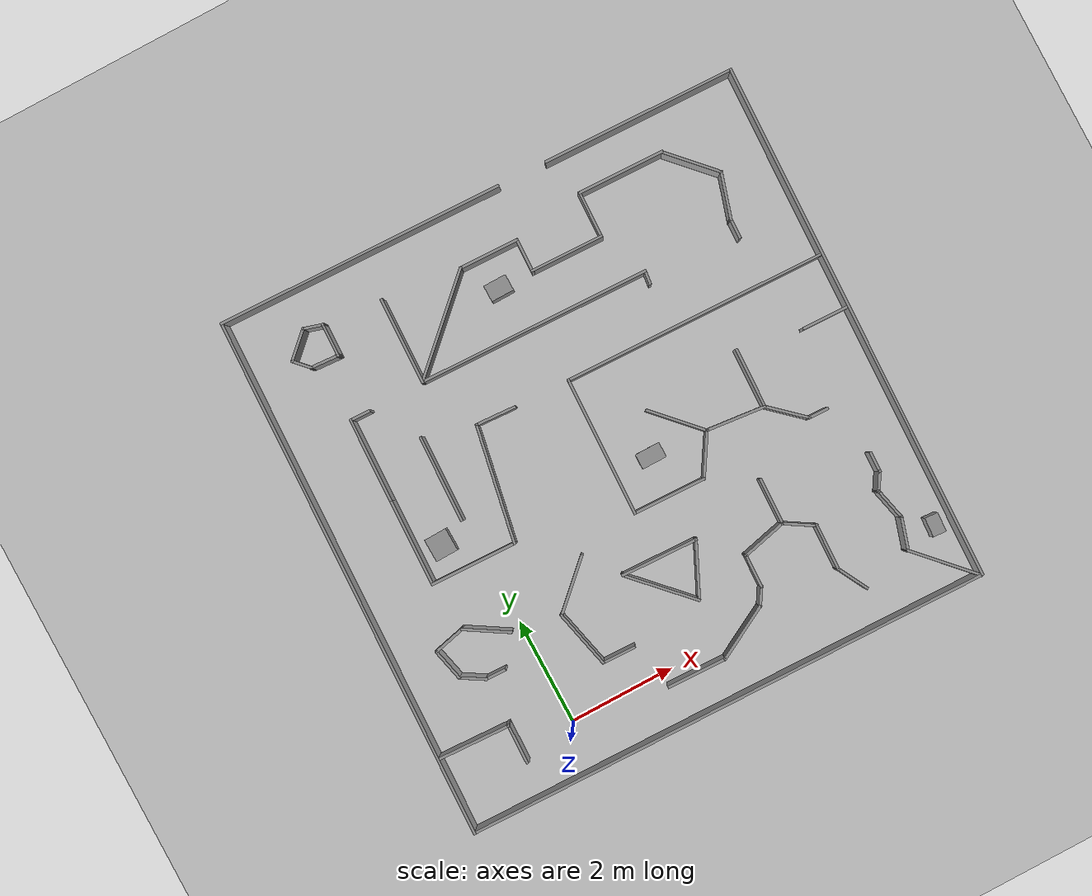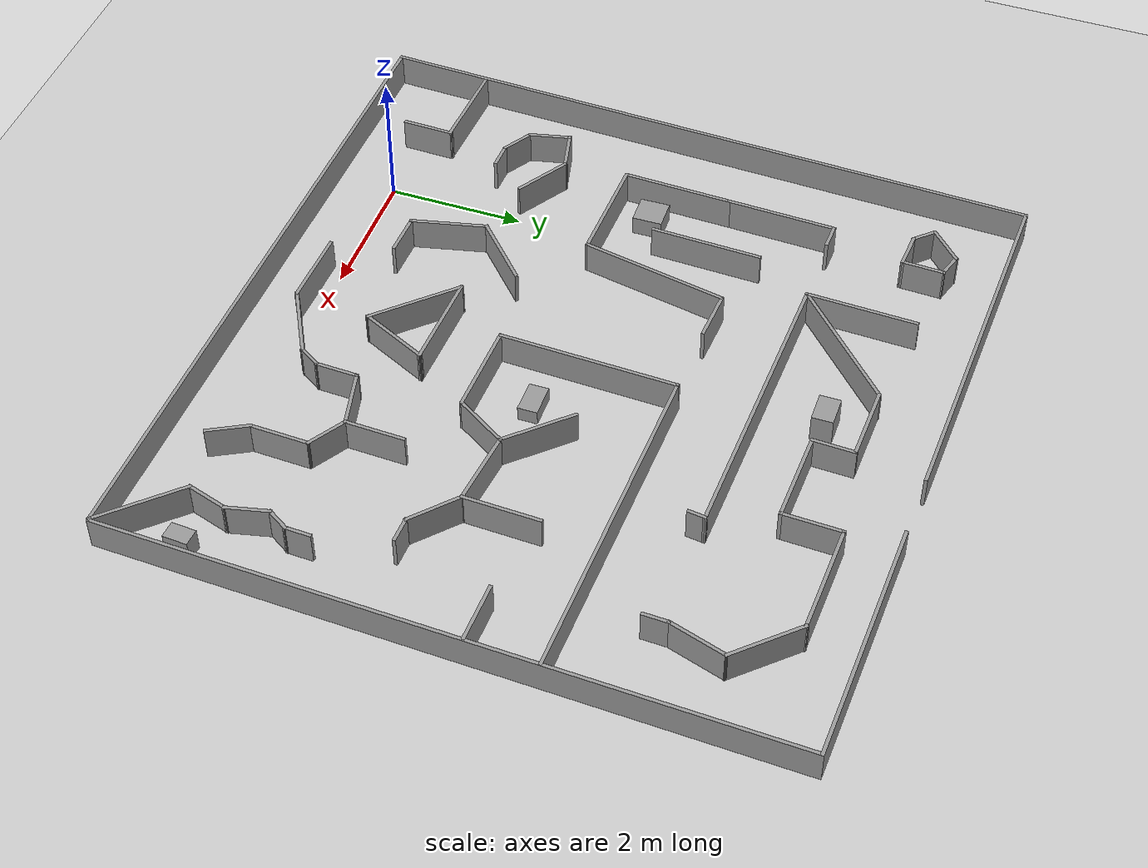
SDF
<sdf version="1.7">
 <world name="default">
  <light name="sun" type="directional">
   <pose>0 0 10 0 -0 0</pose>
   <diffuse>0.8 0.8 0.8 1</diffuse>
   <specular>0.2 0.2 0.2 1</specular>
   <attenuation>
    <range>1000</range>
    <constant>0.9</constant>
    <linear>0.01</linear>
    <quadratic>0.001</quadratic>
   </attenuation>
   <direction>-0.5 0.1 -0.9</direction>
   <spot><inner_angle>0</inner_angle><outer_angle>0</outer_angle><falloff>0</falloff></spot>
  </light>
  <model name="ground_plane">
   <static>1</static>
   <link name="link">
    <collision name="collision">
     <geometry><plane><normal>0 0 1</normal><size>100 100</size></plane></geometry>
     <surface>
      <contact><collide_bitmask>65535</collide_bitmask></contact>
      <friction><ode><mu>100</mu><mu2>50</mu2></ode></friction>
     </surface>
    </collision>
    <visual name="visual">
     <cast_shadows>0</cast_shadows>
     <geometry><plane><normal>0 0 1</normal><size>100 100</size></plane></geometry>
     <material>
      <script><uri>file://media/materials/scripts/gazebo.material</uri><name>Gazebo/Grey</name></script>
     </material>
    </visual>
   </link>
  </model>
  <gravity>0 0 -9.8</gravity>
  <magnetic_field>6e-06 2.3e-05 -4.2e-05</magnetic_field>
  <atmosphere type="adiabatic"/>
  <physics type="ode">
   <max_step_size>0.001</max_step_size>
   <real_time_factor>1</real_time_factor>
   <real_time_update_rate>1000</real_time_update_rate>
  </physics>
  <scene><ambient>0.4 0.4 0.4 1</ambient><background>0.7 0.7 0.7 1</background><shadows>1</shadows></scene>
  <spherical_coordinates>
   <surface_model>EARTH_WGS84</surface_model>
   <latitude_deg>0</latitude_deg>
   <longitude_deg>0</longitude_deg>
   <elevation>0</elevation>
   <heading_deg>0</heading_deg>
  </spherical_coordinates>
  <model name="zhencha">
   <pose>2.70425 3.3884 0 0 -0 3.11326</pose>
   <link name="Wall_0">
    <collision name="Wall_0_Collision">
     <geometry><box><size>9.9 0.05 0.5</size></box></geometry>
     <pose>0 0 0.25 0 -0 0</pose>
    </collision>
    <visual name="Wall_0_Visual">
     <pose>0 0 0.25 0 -0 0</pose>
     <geometry><box><size>9.9 0.05 0.5</size></box></geometry>
     <material>
      <script><uri>file://media/materials/scripts/gazebo.material</uri><name>Gazebo/Grey</name></script>
      <ambient>1 1 1 1</ambient>
     </material>
     <meta><layer>0</layer></meta>
    </visual>
    <pose>-4.98321 -0.637479 0 0 -0 -1.5708</pose>
   </link>
   <link name="Wall_10">
    <collision name="Wall_10_Collision">
     <geometry><box><size>1.65 0.05 0.5</size></box></geometry>
     <pose>0 0 0.25 0 -0 0</pose>
    </collision>
    <visual name="Wall_10_Visual">
     <pose>0 0 0.25 0 -0 0</pose>
     <geometry><box><size>1.65 0.05 0.5</size></box></geometry>
     <material>
      <script><uri>file://media/materials/scripts/gazebo.material</uri><name>Gazebo/Grey</name></script>
      <ambient>1 1 1 1</ambient>
     </material>
     <meta><layer>0</layer></meta>
    </visual>
    <pose>2.27679 -3.88248 0 0 -0 -1.5708</pose>
   </link>
   <link name="Wall_12">
    <collision name="Wall_12_Collision">
     <geometry><box><size>0.280868 0.05 0.5</size></box></geometry>
     <pose>0 0 0.25 0 -0 0</pose>
    </collision>
    <visual name="Wall_12_Visual">
     <pose>0 0 0.25 0 -0 0</pose>
     <geometry><box><size>0.280868 0.05 0.5</size></box></geometry>
     <material>
      <script><uri>file://media/materials/scripts/gazebo.material</uri><name>Gazebo/Grey</name></script>
      <ambient>1 1 1 1</ambient>
     </material>
     <meta><layer>0</layer></meta>
    </visual>
    <pose>-2.06321 -2.96748 0 0 -0 -1.65753</pose>
   </link>
   <link name="Wall_14">
    <collision name="Wall_14_Collision">
     <geometry><box><size>0.780274 0.05 0.5</size></box></geometry>
     <pose>0 0 0.25 0 -0 0</pose>
    </collision>
    <visual name="Wall_14_Visual">
     <pose>0 0 0.25 0 -0 0</pose>
     <geometry><box><size>0.780274 0.05 0.5</size></box></geometry>
     <material>
      <script><uri>file://media/materials/scripts/gazebo.material</uri><name>Gazebo/Grey</name></script>
      <ambient>1 1 1 1</ambient>
     </material>
     <meta><layer>0</layer></meta>
    </visual>
    <pose>1.40179 -1.98248 0 0 -0 -0.02739</pose>
   </link>
   <link name="Wall_15">
    <collision name="Wall_15_Collision">
     <geometry><box><size>2.21529 0.05 0.5</size></box></geometry>
     <pose>0 0 0.25 0 -0 0</pose>
    </collision>
    <visual name="Wall_15_Visual">
     <pose>0 0 0.25 0 -0 0</pose>
     <geometry><box><size>2.21529 0.05 0.5</size></box></geometry>
     <material>
      <script><uri>file://media/materials/scripts/gazebo.material</uri><name>Gazebo/Grey</name></script>
      <ambient>1 1 1 1</ambient>
     </material>
     <meta><layer>0</layer></meta>
    </visual>
    <pose>1.93179 -0.912479 0 0 -0 1.4178</pose>
   </link>
   <link name="Wall_17">
    <collision name="Wall_17_Collision">
     <geometry><box><size>2.65 0.05 0.5</size></box></geometry>
     <pose>0 0 0.25 0 -0 0</pose>
    </collision>
    <visual name="Wall_17_Visual">
     <pose>0 0 0.25 0 -0 0</pose>
     <geometry><box><size>2.65 0.05 0.5</size></box></geometry>
     <material>
      <script><uri>file://media/materials/scripts/gazebo.material</uri><name>Gazebo/Grey</name></script>
      <ambient>1 1 1 1</ambient>
     </material>
     <meta><layer>0</layer></meta>
    </visual>
    <pose>-0.02321 -0.67248 0 0 -0 1.5708</pose>
   </link>
   <link name="Wall_18">
    <collision name="Wall_18_Collision">
     <geometry><box><size>1.4 0.05 0.5</size></box></geometry>
     <pose>0 0 0.25 0 -0 0</pose>
    </collision>
    <visual name="Wall_18_Visual">
     <pose>0 0 0.25 0 -0 0</pose>
     <geometry><box><size>1.4 0.05 0.5</size></box></geometry>
     <material>
      <script><uri>file://media/materials/scripts/gazebo.material</uri><name>Gazebo/Grey</name></script>
      <ambient>1 1 1 1</ambient>
     </material>
     <meta><layer>0</layer></meta>
    </visual>
    <pose>-0.69821 0.627521 0 0 -0 3.14159</pose>
   </link>
   <link name="Wall_19">
    <collision name="Wall_19_Collision">
     <geometry><box><size>0.9 0.05 0.5</size></box></geometry>
     <pose>0 0 0.25 0 -0 0</pose>
    </collision>
    <visual name="Wall_19_Visual">
     <pose>0 0 0.25 0 -0 0</pose>
     <geometry><box><size>0.9 0.05 0.5</size></box></geometry>
     <material>
      <script><uri>file://media/materials/scripts/gazebo.material</uri><name>Gazebo/Grey</name></script>
      <ambient>1 1 1 1</ambient>
     </material>
     <meta><layer>0</layer></meta>
    </visual>
    <pose>-1.58571 0.259521 0 0 -0 -2.09447</pose>
   </link>
   <link name="Wall_2">
    <pose>-0.00821 -5.56248 0 0 -0 0</pose>
    <visual name="Wall_2_Visual_0">
     <pose>-3.1725 0 0.25 0 -0 0</pose>
     <geometry><box><size>3.655 0.05 0.5</size></box></geometry>
     <material>
      <script><uri>file://media/materials/scripts/gazebo.material</uri><name>Gazebo/Grey</name></script>
      <ambient>1 1 1 1</ambient>
     </material>
     <meta><layer>0</layer></meta>
    </visual>
    <collision name="Wall_2_Collision_0">
     <geometry><box><size>3.655 0.05 0.5</size></box></geometry>
     <pose>-3.1725 0 0.25 0 -0 0</pose>
    </collision>
    <visual name="Wall_2_Visual_1">
     <pose>2.2775 0 0.25 0 -0 0</pose>
     <geometry><box><size>5.445 0.05 0.5</size></box></geometry>
     <material>
      <script><uri>file://media/materials/scripts/gazebo.material</uri><name>Gazebo/Grey</name></script>
      <ambient>1 1 1 1</ambient>
     </material>
     <meta><layer>0</layer></meta>
    </visual>
    <collision name="Wall_2_Collision_1">
     <geometry><box><size>5.445 0.05 0.5</size></box></geometry>
     <pose>2.2775 0 0.25 0 -0 0</pose>
    </collision>
   </link>
   <link name="Wall_20">
    <collision name="Wall_20_Collision">
     <geometry><box><size>1.14292 0.05 0.5</size></box></geometry>
     <pose>0 0 0.25 0 -0 0</pose>
    </collision>
    <visual name="Wall_20_Visual">
     <pose>0 0 0.25 0 -0 0</pose>
     <geometry><box><size>1.14292 0.05 0.5</size></box></geometry>
     <material>
      <script><uri>file://media/materials/scripts/gazebo.material</uri><name>Gazebo/Grey</name></script>
      <ambient>1 1 1 1</ambient>
     </material>
     <meta><layer>0</layer></meta>
    </visual>
    <pose>-2.34321 -0.06848 0 0 -0 3.06833</pose>
   </link>
   <link name="Wall_21">
    <collision name="Wall_21_Collision">
     <geometry><box><size>0.852949 0.05 0.5</size></box></geometry>
     <pose>0 0 0.25 0 -0 0</pose>
    </collision>
    <visual name="Wall_21_Visual">
     <pose>0 0 0.25 0 -0 0</pose>
     <geometry><box><size>0.852949 0.05 0.5</size></box></geometry>
     <material>
      <script><uri>file://media/materials/scripts/gazebo.material</uri><name>Gazebo/Grey</name></script>
      <ambient>1 1 1 1</ambient>
     </material>
     <meta><layer>0</layer></meta>
    </visual>
    <pose>-3.19371 0.23202 0 0 -0 2.43553</pose>
   </link>
   <link name="Wall_22">
    <collision name="Wall_22_Collision">
     <geometry><box><size>0.400041 0.05 0.5</size></box></geometry>
     <pose>0 0 0.25 0 -0 0</pose>
    </collision>
    <visual name="Wall_22_Visual">
     <pose>0 0 0.25 0 -0 0</pose>
     <geometry><box><size>0.400041 0.05 0.5</size></box></geometry>
     <material>
      <script><uri>file://media/materials/scripts/gazebo.material</uri><name>Gazebo/Grey</name></script>
      <ambient>1 1 1 1</ambient>
     </material>
     <meta><layer>0</layer></meta>
    </visual>
    <pose>-3.67421 0.492521 0 0 -0 3.14159</pose>
   </link>
   <link name="Wall_24">
    <collision name="Wall_24_Collision">
     <geometry><box><size>1.15012 0.05 0.5</size></box></geometry>
     <pose>0 0 0.25 0 -0 0</pose>
    </collision>
    <visual name="Wall_24_Visual">
     <pose>0 0 0.25 0 -0 0</pose>
     <geometry><box><size>1.15012 0.05 0.5</size></box></geometry>
     <material>
      <script><uri>file://media/materials/scripts/gazebo.material</uri><name>Gazebo/Grey</name></script>
      <ambient>1 1 1 1</ambient>
     </material>
     <meta><layer>0</layer></meta>
    </visual>
    <pose>-2.88821 -0.578479 0 0 -0 -1.5708</pose>
   </link>
   <link name="Wall_26">
    <collision name="Wall_26_Collision">
     <geometry><box><size>1.15009 0.05 0.5</size></box></geometry>
     <pose>0 0 0.25 0 -0 0</pose>
    </collision>
    <visual name="Wall_26_Visual">
     <pose>0 0 0.25 0 -0 0</pose>
     <geometry><box><size>1.15009 0.05 0.5</size></box></geometry>
     <material>
      <script><uri>file://media/materials/scripts/gazebo.material</uri><name>Gazebo/Grey</name></script>
      <ambient>1 1 1 1</ambient>
     </material>
     <meta><layer>0</layer></meta>
    </visual>
    <pose>-1.40921 -0.497479 0 0 -0 -0.785398</pose>
   </link>
   <link name="Wall_28">
    <collision name="Wall_28_Collision">
     <geometry><box><size>2.15 0.05 0.5</size></box></geometry>
     <pose>0 0 0.25 0 -0 0</pose>
    </collision>
    <visual name="Wall_28_Visual">
     <pose>0 0 0.25 0 -0 0</pose>
     <geometry><box><size>2.15 0.05 0.5</size></box></geometry>
     <material>
      <script><uri>file://media/materials/scripts/gazebo.material</uri><name>Gazebo/Grey</name></script>
      <ambient>1 1 1 1</ambient>
     </material>
     <meta><layer>0</layer></meta>
    </visual>
    <pose>1.53429 -3.82498 0 0 -0 -2.35619</pose>
   </link>
   <link name="Wall_29">
    <collision name="Wall_29_Collision">
     <geometry><box><size>1.14992 0.05 0.5</size></box></geometry>
     <pose>0 0 0.25 0 -0 0</pose>
    </collision>
    <visual name="Wall_29_Visual">
     <pose>0 0 0.25 0 -0 0</pose>
     <geometry><box><size>1.14992 0.05 0.5</size></box></geometry>
     <material>
      <script><uri>file://media/materials/scripts/gazebo.material</uri><name>Gazebo/Grey</name></script>
      <ambient>1 1 1 1</ambient>
     </material>
     <meta><layer>0</layer></meta>
    </visual>
    <pose>0.24179 -4.56748 0 0 -0 3.14159</pose>
   </link>
   <link name="Wall_3">
    <collision name="Wall_3_Collision">
     <geometry><box><size>9.99301 0.05 0.5</size></box></geometry>
     <pose>0 0 0.25 0 -0 0</pose>
    </collision>
    <visual name="Wall_3_Visual">
     <pose>0 0 0.25 0 -0 0</pose>
     <geometry><box><size>9.99301 0.05 0.5</size></box></geometry>
     <material>
      <script><uri>file://media/materials/scripts/gazebo.material</uri><name>Gazebo/Grey</name></script>
      <ambient>1 1 1 1</ambient>
     </material>
     <meta><layer>0</layer></meta>
    </visual>
    <pose>4.97479 -0.59098 0 0 -0 1.56919</pose>
   </link>
   <link name="Wall_30">
    <collision name="Wall_30_Collision">
     <geometry><box><size>0.650076 0.05 0.5</size></box></geometry>
     <pose>0 0 0.25 0 -0 0</pose>
    </collision>
    <visual name="Wall_30_Visual">
     <pose>0 0 0.25 0 -0 0</pose>
     <geometry><box><size>0.650076 0.05 0.5</size></box></geometry>
     <material>
      <script><uri>file://media/materials/scripts/gazebo.material</uri><name>Gazebo/Grey</name></script>
      <ambient>1 1 1 1</ambient>
     </material>
     <meta><layer>0</layer></meta>
    </visual>
    <pose>-0.30821 -4.26748 0 0 -0 1.5708</pose>
   </link>
   <link name="Wall_31">
    <collision name="Wall_31_Collision">
     <geometry><box><size>1.4 0.05 0.5</size></box></geometry>
     <pose>0 0 0.25 0 -0 0</pose>
    </collision>
    <visual name="Wall_31_Visual">
     <pose>0 0 0.25 0 -0 0</pose>
     <geometry><box><size>1.4 0.05 0.5</size></box></geometry>
     <material>
      <script><uri>file://media/materials/scripts/gazebo.material</uri><name>Gazebo/Grey</name></script>
      <ambient>1 1 1 1</ambient>
     </material>
     <meta><layer>0</layer></meta>
    </visual>
    <pose>-0.98321 -3.96748 0 0 -0 3.14159</pose>
   </link>
   <link name="Wall_32">
    <collision name="Wall_32_Collision">
     <geometry><box><size>0.899924 0.05 0.5</size></box></geometry>
     <pose>0 0 0.25 0 -0 0</pose>
    </collision>
    <visual name="Wall_32_Visual">
     <pose>0 0 0.25 0 -0 0</pose>
     <geometry><box><size>0.899924 0.05 0.5</size></box></geometry>
     <material>
      <script><uri>file://media/materials/scripts/gazebo.material</uri><name>Gazebo/Grey</name></script>
      <ambient>1 1 1 1</ambient>
     </material>
     <meta><layer>0</layer></meta>
    </visual>
    <pose>-1.65821 -4.39248 0 0 -0 -1.5708</pose>
   </link>
   <link name="Wall_33">
    <collision name="Wall_33_Collision">
     <geometry><box><size>1.64992 0.05 0.5</size></box></geometry>
     <pose>0 0 0.25 0 -0 0</pose>
    </collision>
    <visual name="Wall_33_Visual">
     <pose>0 0 0.25 0 -0 0</pose>
     <geometry><box><size>1.64992 0.05 0.5</size></box></geometry>
     <material>
      <script><uri>file://media/materials/scripts/gazebo.material</uri><name>Gazebo/Grey</name></script>
      <ambient>1 1 1 1</ambient>
     </material>
     <meta><layer>0</layer></meta>
    </visual>
    <pose>-2.45821 -4.81748 0 0 -0 3.14159</pose>
   </link>
   <link name="Wall_34">
    <collision name="Wall_34_Collision">
     <geometry><box><size>1.15 0.05 0.5</size></box></geometry>
     <pose>0 0 0.25 0 -0 0</pose>
    </collision>
    <visual name="Wall_34_Visual">
     <pose>0 0 0.25 0 -0 0</pose>
     <geometry><box><size>1.15 0.05 0.5</size></box></geometry>
     <material>
      <script><uri>file://media/materials/scripts/gazebo.material</uri><name>Gazebo/Grey</name></script>
      <ambient>1 1 1 1</ambient>
     </material>
     <meta><layer>0</layer></meta>
    </visual>
    <pose>-3.64721 -4.42848 0 0 -0 2.35619</pose>
   </link>
   <link name="Wall_35">
    <collision name="Wall_35_Collision">
     <geometry><box><size>0.899964 0.05 0.5</size></box></geometry>
     <pose>0 0 0.25 0 -0 0</pose>
    </collision>
    <visual name="Wall_35_Visual">
     <pose>0 0 0.25 0 -0 0</pose>
     <geometry><box><size>0.899964 0.05 0.5</size></box></geometry>
     <material>
      <script><uri>file://media/materials/scripts/gazebo.material</uri><name>Gazebo/Grey</name></script>
      <ambient>1 1 1 1</ambient>
     </material>
     <meta><layer>0</layer></meta>
    </visual>
    <pose>-3.92621 -3.62898 0 0 -0 1.30898</pose>
   </link>
   <link name="Wall_36">
    <collision name="Wall_36_Collision">
     <geometry><box><size>0.39993 0.05 0.5</size></box></geometry>
     <pose>0 0 0.25 0 -0 0</pose>
    </collision>
    <visual name="Wall_36_Visual">
     <pose>0 0 0.25 0 -0 0</pose>
     <geometry><box><size>0.39993 0.05 0.5</size></box></geometry>
     <material>
      <script><uri>file://media/materials/scripts/gazebo.material</uri><name>Gazebo/Grey</name></script>
      <ambient>1 1 1 1</ambient>
     </material>
     <meta><layer>0</layer></meta>
    </visual>
    <pose>-3.81621 -3.04348 0 0 -0 1.5708</pose>
   </link>
   <link name="Wall_38">
    <collision name="Wall_38_Collision">
     <geometry><box><size>1.65 0.05 0.5</size></box></geometry>
     <pose>0 0 0.25 0 -0 0</pose>
    </collision>
    <visual name="Wall_38_Visual">
     <pose>0 0 0.25 0 -0 0</pose>
     <geometry><box><size>1.65 0.05 0.5</size></box></geometry>
     <material>
      <script><uri>file://media/materials/scripts/gazebo.material</uri><name>Gazebo/Grey</name></script>
      <ambient>1 1 1 1</ambient>
     </material>
     <meta><layer>0</layer></meta>
    </visual>
    <pose>2.89679 0.157521 0 0 -0 0</pose>
   </link>
   <link name="Wall_39">
    <collision name="Wall_39_Collision">
     <geometry><box><size>1.65 0.05 0.5</size></box></geometry>
     <pose>0 0 0.25 0 -0 0</pose>
    </collision>
    <visual name="Wall_39_Visual">
     <pose>0 0 0.25 0 -0 0</pose>
     <geometry><box><size>1.65 0.05 0.5</size></box></geometry>
     <material>
      <script><uri>file://media/materials/scripts/gazebo.material</uri><name>Gazebo/Grey</name></script>
      <ambient>1 1 1 1</ambient>
     </material>
     <meta><layer>0</layer></meta>
    </visual>
    <pose>3.69679 -0.642479 0 0 -0 -1.5708</pose>
   </link>
   <link name="Wall_4">
    <collision name="Wall_4_Collision">
     <geometry><box><size>9.99677 0.05 0.5</size></box></geometry>
     <pose>0 0 0.25 0 -0 0</pose>
    </collision>
    <visual name="Wall_4_Visual">
     <pose>0 0 0.25 0 -0 0</pose>
     <geometry><box><size>9.99677 0.05 0.5</size></box></geometry>
     <material>
      <script><uri>file://media/materials/scripts/gazebo.material</uri><name>Gazebo/Grey</name></script>
      <ambient>1 1 1 1</ambient>
     </material>
     <meta><layer>0</layer></meta>
    </visual>
    <pose>0.00979 4.33902 0 0 -0 -3.13325</pose>
   </link>
   <link name="Wall_40">
    <collision name="Wall_40_Collision">
     <geometry><box><size>1.65 0.05 0.5</size></box></geometry>
     <pose>0 0 0.25 0 -0 0</pose>
    </collision>
    <visual name="Wall_40_Visual">
     <pose>0 0 0.25 0 -0 0</pose>
     <geometry><box><size>1.65 0.05 0.5</size></box></geometry>
     <material>
      <script><uri>file://media/materials/scripts/gazebo.material</uri><name>Gazebo/Grey</name></script>
      <ambient>1 1 1 1</ambient>
     </material>
     <meta><layer>0</layer></meta>
    </visual>
    <pose>3.69679 -2.24248 0 0 -0 -1.5708</pose>
   </link>
   <link name="Wall_41">
    <collision name="Wall_41_Collision">
     <geometry><box><size>0.4 0.05 0.5</size></box></geometry>
     <pose>0 0 0.25 0 -0 0</pose>
    </collision>
    <visual name="Wall_41_Visual">
     <pose>0 0 0.25 0 -0 0</pose>
     <geometry><box><size>0.4 0.05 0.5</size></box></geometry>
     <material>
      <script><uri>file://media/materials/scripts/gazebo.material</uri><name>Gazebo/Grey</name></script>
      <ambient>1 1 1 1</ambient>
     </material>
     <meta><layer>0</layer></meta>
    </visual>
    <pose>3.52179 -3.04248 0 0 -0 3.14159</pose>
   </link>
   <link name="Wall_44">
    <collision name="Wall_44_Collision">
     <geometry><box><size>1.15008 0.05 0.5</size></box></geometry>
     <pose>0 0 0.25 0 -0 0</pose>
    </collision>
    <visual name="Wall_44_Visual">
     <pose>0 0 0.25 0 -0 0</pose>
     <geometry><box><size>1.15008 0.05 0.5</size></box></geometry>
     <material>
      <script><uri>file://media/materials/scripts/gazebo.material</uri><name>Gazebo/Grey</name></script>
      <ambient>1 1 1 1</ambient>
     </material>
     <meta><layer>0</layer></meta>
    </visual>
    <pose>1.53279 1.26752 0 0 -0 0.785398</pose>
   </link>
   <link name="Wall_45">
    <collision name="Wall_45_Collision">
     <geometry><box><size>1.15023 0.05 0.5</size></box></geometry>
     <pose>0 0 0.25 0 -0 0</pose>
    </collision>
    <visual name="Wall_45_Visual">
     <pose>0 0 0.25 0 -0 0</pose>
     <geometry><box><size>1.15023 0.05 0.5</size></box></geometry>
     <material>
      <script><uri>file://media/materials/scripts/gazebo.material</uri><name>Gazebo/Grey</name></script>
      <ambient>1 1 1 1</ambient>
     </material>
     <meta><layer>0</layer></meta>
    </visual>
    <pose>1.77929 2.18802 0 0 -0 1.83275</pose>
   </link>
   <link name="Wall_46">
    <collision name="Wall_46_Collision">
     <geometry><box><size>0.650086 0.05 0.5</size></box></geometry>
     <pose>0 0 0.25 0 -0 0</pose>
    </collision>
    <visual name="Wall_46_Visual">
     <pose>0 0 0.25 0 -0 0</pose>
     <geometry><box><size>0.650086 0.05 0.5</size></box></geometry>
     <material>
      <script><uri>file://media/materials/scripts/gazebo.material</uri><name>Gazebo/Grey</name></script>
      <ambient>1 1 1 1</ambient>
     </material>
     <meta><layer>0</layer></meta>
    </visual>
    <pose>1.33679 2.71952 0 0 -0 3.14159</pose>
   </link>
   <link name="Wall_48">
    <collision name="Wall_48_Collision">
     <geometry><box><size>1.4 0.05 0.5</size></box></geometry>
     <pose>0 0 0.25 0 -0 0</pose>
    </collision>
    <visual name="Wall_48_Visual">
     <pose>0 0 0.25 0 -0 0</pose>
     <geometry><box><size>1.4 0.05 0.5</size></box></geometry>
     <material>
      <script><uri>file://media/materials/scripts/gazebo.material</uri><name>Gazebo/Grey</name></script>
      <ambient>1 1 1 1</ambient>
     </material>
     <meta><layer>0</layer></meta>
    </visual>
    <pose>-4.48571 3.82002 0 0 -0 -0.785398</pose>
   </link>
   <link name="Wall_49">
    <collision name="Wall_49_Collision">
     <geometry><box><size>0.649713 0.05 0.5</size></box></geometry>
     <pose>0 0 0.25 0 -0 0</pose>
    </collision>
    <visual name="Wall_49_Visual">
     <pose>0 0 0.25 0 -0 0</pose>
     <geometry><box><size>0.649713 0.05 0.5</size></box></geometry>
     <material>
      <script><uri>file://media/materials/scripts/gazebo.material</uri><name>Gazebo/Grey</name></script>
      <ambient>1 1 1 1</ambient>
     </material>
     <meta><layer>0</layer></meta>
    </visual>
    <pose>-4.08621 3.05302 0 0 -0 -1.83398</pose>
   </link>
   <link name="Wall_50">
    <collision name="Wall_50_Collision">
     <geometry><box><size>0.650223 0.05 0.5</size></box></geometry>
     <pose>0 0 0.25 0 -0 0</pose>
    </collision>
    <visual name="Wall_50_Visual">
     <pose>0 0 0.25 0 -0 0</pose>
     <geometry><box><size>0.650223 0.05 0.5</size></box></geometry>
     <material>
      <script><uri>file://media/materials/scripts/gazebo.material</uri><name>Gazebo/Grey</name></script>
      <ambient>1 1 1 1</ambient>
     </material>
     <meta><layer>0</layer></meta>
    </visual>
    <pose>-4.08621 2.47352 0 0 -0 -1.30805</pose>
   </link>
   <link name="Wall_51">
    <collision name="Wall_51_Collision">
     <geometry><box><size>0.399948 0.05 0.5</size></box></geometry>
     <pose>0 0 0.25 0 -0 0</pose>
    </collision>
    <visual name="Wall_51_Visual">
     <pose>0 0 0.25 0 -0 0</pose>
     <geometry><box><size>0.399948 0.05 0.5</size></box></geometry>
     <material>
      <script><uri>file://media/materials/scripts/gazebo.material</uri><name>Gazebo/Grey</name></script>
      <ambient>1 1 1 1</ambient>
     </material>
     <meta><layer>0</layer></meta>
    </visual>
    <pose>-4.09571 2.03202 0 0 -0 -2.09455</pose>
   </link>
   <link name="Wall_53">
    <collision name="Wall_53_Collision">
     <geometry><box><size>0.399814 0.05 0.5</size></box></geometry>
     <pose>0 0 0.25 0 -0 0</pose>
    </collision>
    <visual name="Wall_53_Visual">
     <pose>0 0 0.25 0 -0 0</pose>
     <geometry><box><size>0.399814 0.05 0.5</size></box></geometry>
     <material>
      <script><uri>file://media/materials/scripts/gazebo.material</uri><name>Gazebo/Grey</name></script>
      <ambient>1 1 1 1</ambient>
     </material>
     <meta><layer>0</layer></meta>
    </visual>
    <pose>-4.18321 1.70552 0 0 -0 -1.5708</pose>
   </link>
   <link name="Wall_55">
    <collision name="Wall_55_Collision">
     <geometry><box><size>0.9 0.05 0.5</size></box></geometry>
     <pose>0 0 0.25 0 -0 0</pose>
    </collision>
    <visual name="Wall_55_Visual">
     <pose>0 0 0.25 0 -0 0</pose>
     <geometry><box><size>0.9 0.05 0.5</size></box></geometry>
     <material>
      <script><uri>file://media/materials/scripts/gazebo.material</uri><name>Gazebo/Grey</name></script>
      <ambient>1 1 1 1</ambient>
     </material>
     <meta><layer>0</layer></meta>
    </visual>
    <pose>-2.77321 2.66252 0 0 -0 -1.5708</pose>
   </link>
   <link name="Wall_56">
    <collision name="Wall_56_Collision">
     <geometry><box><size>0.650333 0.05 0.5</size></box></geometry>
     <pose>0 0 0.25 0 -0 0</pose>
    </collision>
    <visual name="Wall_56_Visual">
     <pose>0 0 0.25 0 -0 0</pose>
     <geometry><box><size>0.650333 0.05 0.5</size></box></geometry>
     <material>
      <script><uri>file://media/materials/scripts/gazebo.material</uri><name>Gazebo/Grey</name></script>
      <ambient>1 1 1 1</ambient>
     </material>
     <meta><layer>0</layer></meta>
    </visual>
    <pose>-2.51321 2.08752 0 0 -0 -0.523278</pose>
   </link>
   <link name="Wall_57">
    <collision name="Wall_57_Collision">
     <geometry><box><size>0.899628 0.05 0.5</size></box></geometry>
     <pose>0 0 0.25 0 -0 0</pose>
    </collision>
    <visual name="Wall_57_Visual">
     <pose>0 0 0.25 0 -0 0</pose>
     <geometry><box><size>0.899628 0.05 0.5</size></box></geometry>
     <material>
      <script><uri>file://media/materials/scripts/gazebo.material</uri><name>Gazebo/Grey</name></script>
      <ambient>1 1 1 1</ambient>
     </material>
     <meta><layer>0</layer></meta>
    </visual>
    <pose>-1.84271 2.04752 0 0 -0 0.261815</pose>
   </link>
   <link name="Wall_58">
    <collision name="Wall_58_Collision">
     <geometry><box><size>0.65 0.05 0.5</size></box></geometry>
     <pose>0 0 0.25 0 -0 0</pose>
    </collision>
    <visual name="Wall_58_Visual">
     <pose>0 0 0.25 0 -0 0</pose>
     <geometry><box><size>0.65 0.05 0.5</size></box></geometry>
     <material>
      <script><uri>file://media/materials/scripts/gazebo.material</uri><name>Gazebo/Grey</name></script>
      <ambient>1 1 1 1</ambient>
     </material>
     <meta><layer>0</layer></meta>
    </visual>
    <pose>-1.43221 2.45752 0 0 -0 1.5708</pose>
   </link>
   <link name="Wall_59">
    <collision name="Wall_59_Collision">
     <geometry><box><size>0.399906 0.05 0.5</size></box></geometry>
     <pose>0 0 0.25 0 -0 0</pose>
    </collision>
    <visual name="Wall_59_Visual">
     <pose>0 0 0.25 0 -0 0</pose>
     <geometry><box><size>0.399906 0.05 0.5</size></box></geometry>
     <material>
      <script><uri>file://media/materials/scripts/gazebo.material</uri><name>Gazebo/Grey</name></script>
      <ambient>1 1 1 1</ambient>
     </material>
     <meta><layer>0</layer></meta>
    </visual>
    <pose>-1.34471 2.90902 0 0 -0 1.04704</pose>
   </link>
   <link name="Wall_6">
    <collision name="Wall_6_Collision">
     <geometry><box><size>5 0.05 0.5</size></box></geometry>
     <pose>0 0 0.25 0 -0 0</pose>
    </collision>
    <visual name="Wall_6_Visual">
     <pose>0 0 0.25 0 -0 0</pose>
     <geometry><box><size>5 0.05 0.5</size></box></geometry>
     <material>
      <script><uri>file://media/materials/scripts/gazebo.material</uri><name>Gazebo/Grey</name></script>
      <ambient>1 1 1 1</ambient>
     </material>
     <meta><layer>0</layer></meta>
    </visual>
    <pose>-2.49821 -1.97248 0 0 -0 0</pose>
   </link>
   <link name="Wall_61">
    <collision name="Wall_61_Collision">
     <geometry><box><size>0.9 0.05 0.5</size></box></geometry>
     <pose>0 0 0.25 0 -0 0</pose>
    </collision>
    <visual name="Wall_61_Visual">
     <pose>0 0 0.25 0 -0 0</pose>
     <geometry><box><size>0.9 0.05 0.5</size></box></geometry>
     <material>
      <script><uri>file://media/materials/scripts/gazebo.material</uri><name>Gazebo/Grey</name></script>
      <ambient>1 1 1 1</ambient>
     </material>
     <meta><layer>0</layer></meta>
    </visual>
    <pose>-2.25321 1.51252 0 0 -0 -1.5708</pose>
   </link>
   <link name="Wall_65">
    <collision name="Wall_65_Collision">
     <geometry><box><size>0.65 0.05 0.5</size></box></geometry>
     <pose>0 0 0.25 0 -0 0</pose>
    </collision>
    <visual name="Wall_65_Visual">
     <pose>0 0 0.25 0 -0 0</pose>
     <geometry><box><size>0.65 0.05 0.5</size></box></geometry>
     <material>
      <script><uri>file://media/materials/scripts/gazebo.material</uri><name>Gazebo/Grey</name></script>
      <ambient>1 1 1 1</ambient>
     </material>
     <meta><layer>0</layer></meta>
    </visual>
    <pose>-2.92321 3.34752 0 0 -0 2.09408</pose>
   </link>
   <link name="Wall_67">
    <collision name="Wall_67_Collision">
     <geometry><box><size>1.10978 0.05 0.5</size></box></geometry>
     <pose>0 0 0.25 0 -0 0</pose>
    </collision>
    <visual name="Wall_67_Visual">
     <pose>0 0 0.25 0 -0 0</pose>
     <geometry><box><size>1.10978 0.05 0.5</size></box></geometry>
     <material>
      <script><uri>file://media/materials/scripts/gazebo.material</uri><name>Gazebo/Grey</name></script>
      <ambient>1 1 1 1</ambient>
     </material>
     <meta><layer>0</layer></meta>
    </visual>
    <pose>-0.56321 2.00102 0 0 -0 -1.97829</pose>
   </link>
   <link name="Wall_68">
    <collision name="Wall_68_Collision">
     <geometry><box><size>1.47003 0.05 0.5</size></box></geometry>
     <pose>0 0 0.25 0 -0 0</pose>
    </collision>
    <visual name="Wall_68_Visual">
     <pose>0 0 0.25 0 -0 0</pose>
     <geometry><box><size>1.47003 0.05 0.5</size></box></geometry>
     <material>
      <script><uri>file://media/materials/scripts/gazebo.material</uri><name>Gazebo/Grey</name></script>
      <ambient>1 1 1 1</ambient>
     </material>
     <meta><layer>0</layer></meta>
    </visual>
    <pose>-0.06321 1.50952 0 0 -0 -0.007042</pose>
   </link>
   <link name="Wall_69">
    <collision name="Wall_69_Collision">
     <geometry><box><size>1.45224 0.05 0.5</size></box></geometry>
     <pose>0 0 0.25 0 -0 0</pose>
    </collision>
    <visual name="Wall_69_Visual">
     <pose>0 0 0.25 0 -0 0</pose>
     <geometry><box><size>1.45224 0.05 0.5</size></box></geometry>
     <material>
      <script><uri>file://media/materials/scripts/gazebo.material</uri><name>Gazebo/Grey</name></script>
      <ambient>1 1 1 1</ambient>
     </material>
     <meta><layer>0</layer></meta>
    </visual>
    <pose>0.14679 1.99602 0 0 -0 2.36477</pose>
   </link>
   <link name="Wall_71">
    <collision name="Wall_71_Collision">
     <geometry><box><size>1.38015 0.05 0.5</size></box></geometry>
     <pose>0 0 0.25 0 -0 0</pose>
    </collision>
    <visual name="Wall_71_Visual">
     <pose>0 0 0.25 0 -0 0</pose>
     <geometry><box><size>1.38015 0.05 0.5</size></box></geometry>
     <material>
      <script><uri>file://media/materials/scripts/gazebo.material</uri><name>Gazebo/Grey</name></script>
      <ambient>1 1 1 1</ambient>
     </material>
     <meta><layer>0</layer></meta>
    </visual>
    <pose>4.27935 2.95484 0 0 -0 3.12656</pose>
   </link>
   <link name="Wall_72">
    <collision name="Wall_72_Collision">
     <geometry><box><size>0.780285 0.05 0.5</size></box></geometry>
     <pose>0 0 0.25 0 -0 0</pose>
    </collision>
    <visual name="Wall_72_Visual">
     <pose>0 0 0.25 0 -0 0</pose>
     <geometry><box><size>0.780285 0.05 0.5</size></box></geometry>
     <material>
      <script><uri>file://media/materials/scripts/gazebo.material</uri><name>Gazebo/Grey</name></script>
      <ambient>1 1 1 1</ambient>
     </material>
     <meta><layer>0</layer></meta>
    </visual>
    <pose>3.61057 3.3224 0 0 -0 1.58115</pose>
   </link>
   <link name="Wall_74">
    <collision name="Wall_74_Collision">
     <geometry><box><size>0.9 0.05 0.5</size></box></geometry>
     <pose>0 0 0.25 0 -0 0</pose>
    </collision>
    <visual name="Wall_74_Visual">
     <pose>0 0 0.25 0 -0 0</pose>
     <geometry><box><size>0.9 0.05 0.5</size></box></geometry>
     <material>
      <script><uri>file://media/materials/scripts/gazebo.material</uri><name>Gazebo/Grey</name></script>
      <ambient>1 1 1 1</ambient>
     </material>
     <meta><layer>0</layer></meta>
    </visual>
    <pose>-4.53821 -0.94248 0 0 -0 0</pose>
   </link>
   <link name="Wall_76">
    <collision name="Wall_76_Collision">
     <geometry><box><size>0.9 0.05 0.5</size></box></geometry>
     <pose>0 0 0.25 0 -0 0</pose>
    </collision>
    <visual name="Wall_76_Visual">
     <pose>0 0 0.25 0 -0 0</pose>
     <geometry><box><size>0.9 0.05 0.5</size></box></geometry>
     <material>
      <script><uri>file://media/materials/scripts/gazebo.material</uri><name>Gazebo/Grey</name></script>
      <ambient>1 1 1 1</ambient>
     </material>
     <meta><layer>0</layer></meta>
    </visual>
    <pose>3.21479 1.30502 0 0 -0 -0.52367</pose>
   </link>
   <link name="Wall_77">
    <collision name="Wall_77_Collision">
     <geometry><box><size>0.650117 0.05 0.5</size></box></geometry>
     <pose>0 0 0.25 0 -0 0</pose>
    </collision>
    <visual name="Wall_77_Visual">
     <pose>0 0 0.25 0 -0 0</pose>
     <geometry><box><size>0.650117 0.05 0.5</size></box></geometry>
     <material>
      <script><uri>file://media/materials/scripts/gazebo.material</uri><name>Gazebo/Grey</name></script>
      <ambient>1 1 1 1</ambient>
     </material>
     <meta><layer>0</layer></meta>
    </visual>
    <pose>3.87279 1.17002 0 0 -0 0.261139</pose>
   </link>
   <link name="Wall_78">
    <collision name="Wall_78_Collision">
     <geometry><box><size>0.650365 0.05 0.5</size></box></geometry>
     <pose>0 0 0.25 0 -0 0</pose>
    </collision>
    <visual name="Wall_78_Visual">
     <pose>0 0 0.25 0 -0 0</pose>
     <geometry><box><size>0.650365 0.05 0.5</size></box></geometry>
     <material>
      <script><uri>file://media/materials/scripts/gazebo.material</uri><name>Gazebo/Grey</name></script>
      <ambient>1 1 1 1</ambient>
     </material>
     <meta><layer>0</layer></meta>
    </visual>
    <pose>4.08479 1.53752 0 0 -0 1.83354</pose>
   </link>
   <link name="Wall_79">
    <collision name="Wall_79_Collision">
     <geometry><box><size>0.525503 0.05 0.5</size></box></geometry>
     <pose>0 0 0.25 0 -0 0</pose>
    </collision>
    <visual name="Wall_79_Visual">
     <pose>0 0 0.25 0 -0 0</pose>
     <geometry><box><size>0.525503 0.05 0.5</size></box></geometry>
     <material>
      <script><uri>file://media/materials/scripts/gazebo.material</uri><name>Gazebo/Grey</name></script>
      <ambient>1 1 1 1</ambient>
     </material>
     <meta><layer>0</layer></meta>
    </visual>
    <pose>3.79979 1.94452 0 0 -0 2.62714</pose>
   </link>
   <link name="Wall_8">
    <collision name="Wall_8_Collision">
     <geometry><box><size>4.4 0.05 0.5</size></box></geometry>
     <pose>0 0 0.25 0 -0 0</pose>
    </collision>
    <visual name="Wall_8_Visual">
     <pose>0 0 0.25 0 -0 0</pose>
     <geometry><box><size>4.4 0.05 0.5</size></box></geometry>
     <material>
      <script><uri>file://media/materials/scripts/gazebo.material</uri><name>Gazebo/Grey</name></script>
      <ambient>1 1 1 1</ambient>
     </material>
     <meta><layer>0</layer></meta>
    </visual>
    <pose>0.10179 -3.08248 0 0 -0 0</pose>
   </link>
   <link name="Wall_80">
    <collision name="Wall_80_Collision">
     <geometry><box><size>0.399878 0.05 0.5</size></box></geometry>
     <pose>0 0 0.25 0 -0 0</pose>
    </collision>
    <visual name="Wall_80_Visual">
     <pose>0 0 0.25 0 -0 0</pose>
     <geometry><box><size>0.399878 0.05 0.5</size></box></geometry>
     <material>
      <script><uri>file://media/materials/scripts/gazebo.material</uri><name>Gazebo/Grey</name></script>
      <ambient>1 1 1 1</ambient>
     </material>
     <meta><layer>0</layer></meta>
    </visual>
    <pose>3.41779 2.06152 0 0 -0 3.14159</pose>
   </link>
   <link name="Wall_82">
    <collision name="Wall_82_Collision">
     <geometry><box><size>1.14975 0.05 0.5</size></box></geometry>
     <pose>0 0 0.25 0 -0 0</pose>
    </collision>
    <visual name="Wall_82_Visual">
     <pose>0 0 0.25 0 -0 0</pose>
     <geometry><box><size>1.14975 0.05 0.5</size></box></geometry>
     <material>
      <script><uri>file://media/materials/scripts/gazebo.material</uri><name>Gazebo/Grey</name></script>
      <ambient>1 1 1 1</ambient>
     </material>
     <meta><layer>0</layer></meta>
    </visual>
    <pose>-0.78121 3.33552 0 0 -0 0.523884</pose>
   </link>
   <link name="Wall_85">
    <collision name="Wall_85_Collision">
     <geometry><box><size>1.15028 0.05 0.5</size></box></geometry>
     <pose>0 0 0.25 0 -0 0</pose>
    </collision>
    <visual name="Wall_85_Visual">
     <pose>0 0 0.25 0 -0 0</pose>
     <geometry><box><size>1.15028 0.05 0.5</size></box></geometry>
     <material>
      <script><uri>file://media/materials/scripts/gazebo.material</uri><name>Gazebo/Grey</name></script>
      <ambient>1 1 1 1</ambient>
     </material>
     <meta><layer>0</layer></meta>
    </visual>
    <pose>0.24479 3.61052 0 0 -0 0</pose>
   </link>
   <link name="Wall_87">
    <collision name="Wall_87_Collision">
     <geometry><box><size>1.65038 0.05 0.5</size></box></geometry>
     <pose>0 0 0.25 0 -0 0</pose>
    </collision>
    <visual name="Wall_87_Visual">
     <pose>0 0 0.25 0 -0 0</pose>
     <geometry><box><size>1.65038 0.05 0.5</size></box></geometry>
     <material>
      <script><uri>file://media/materials/scripts/gazebo.material</uri><name>Gazebo/Grey</name></script>
      <ambient>1 1 1 1</ambient>
     </material>
     <meta><layer>0</layer></meta>
    </visual>
    <pose>2.74179 -1.41948 0 0 -0 -1.5708</pose>
   </link>
   <link name="Wall_89">
    <collision name="Wall_89_Collision">
     <geometry><box><size>0.65 0.05 0.5</size></box></geometry>
     <pose>0 0 0.25 0 -0 0</pose>
    </collision>
    <visual name="Wall_89_Visual">
     <pose>0 0 0.25 0 -0 0</pose>
     <geometry><box><size>0.65 0.05 0.5</size></box></geometry>
     <material>
      <script><uri>file://media/materials/scripts/gazebo.material</uri><name>Gazebo/Grey</name></script>
      <ambient>1 1 1 1</ambient>
     </material>
     <meta><layer>0</layer></meta>
    </visual>
    <pose>3.38879 -4.45748 0 0 -0 -1.5708</pose>
   </link>
   <link name="Wall_90">
    <collision name="Wall_90_Collision">
     <geometry><box><size>0.400036 0.05 0.5</size></box></geometry>
     <pose>0 0 0.25 0 -0 0</pose>
    </collision>
    <visual name="Wall_90_Visual">
     <pose>0 0 0.25 0 -0 0</pose>
     <geometry><box><size>0.400036 0.05 0.5</size></box></geometry>
     <material>
      <script><uri>file://media/materials/scripts/gazebo.material</uri><name>Gazebo/Grey</name></script>
      <ambient>1 1 1 1</ambient>
     </material>
     <meta><layer>0</layer></meta>
    </visual>
    <pose>3.55779 -4.80298 0 0 -0 -0.262995</pose>
   </link>
   <link name="Wall_91">
    <collision name="Wall_91_Collision">
     <geometry><box><size>0.650204 0.05 0.5</size></box></geometry>
     <pose>0 0 0.25 0 -0 0</pose>
    </collision>
    <visual name="Wall_91_Visual">
     <pose>0 0 0.25 0 -0 0</pose>
     <geometry><box><size>0.650204 0.05 0.5</size></box></geometry>
     <material>
      <script><uri>file://media/materials/scripts/gazebo.material</uri><name>Gazebo/Grey</name></script>
      <ambient>1 1 1 1</ambient>
     </material>
     <meta><layer>0</layer></meta>
    </visual>
    <pose>3.93879 -4.63598 0 0 -0 0.786576</pose>
   </link>
   <link name="Wall_92">
    <collision name="Wall_92_Collision">
     <geometry><box><size>0.399311 0.05 0.5</size></box></geometry>
     <pose>0 0 0.25 0 -0 0</pose>
    </collision>
    <visual name="Wall_92_Visual">
     <pose>0 0 0.25 0 -0 0</pose>
     <geometry><box><size>0.399311 0.05 0.5</size></box></geometry>
     <material>
      <script><uri>file://media/materials/scripts/gazebo.material</uri><name>Gazebo/Grey</name></script>
      <ambient>1 1 1 1</ambient>
     </material>
     <meta><layer>0</layer></meta>
    </visual>
    <pose>4.02729 -4.29998 0 0 -0 2.35619</pose>
   </link>
   <link name="Wall_93">
    <collision name="Wall_93_Collision">
     <geometry><box><size>0.565558 0.05 0.5</size></box></geometry>
     <pose>0 0 0.25 0 -0 0</pose>
    </collision>
    <visual name="Wall_93_Visual">
     <pose>0 0 0.25 0 -0 0</pose>
     <geometry><box><size>0.565558 0.05 0.5</size></box></geometry>
     <material>
      <script><uri>file://media/materials/scripts/gazebo.material</uri><name>Gazebo/Grey</name></script>
      <ambient>1 1 1 1</ambient>
     </material>
     <meta><layer>0</layer></meta>
    </visual>
    <pose>3.64629 -4.16698 0 0 -0 3.10472</pose>
   </link>
   <static>1</static>
  </model>
  <model name="unit_box_0">
   <pose>3.43604 3.5115 0.113399 0 -0 0.002742</pose>
   <link name="link">
    <inertial>
     <mass>1</mass>
     <inertia>
      <ixx>0.166667</ixx>
      <ixy>0</ixy>
      <ixz>0</ixz>
      <iyy>0.166667</iyy>
      <iyz>0</iyz>
      <izz>0.166667</izz>
     </inertia>
    </inertial>
    <collision name="collision">
     <geometry><box><size>0.473687 0.288066 0.226799</size></box></geometry>
    </collision>
    <visual name="visual">
     <geometry><box><size>0.473687 0.288066 0.226799</size></box></geometry>
     <material>
      <script><name>Gazebo/Grey</name><uri>file://media/materials/scripts/gazebo.material</uri></script>
     </material>
    </visual>
   </link>
  </model>
  <model name="unit_box_1">
   <pose>2.46369 7.36383 0.212933 0 -0 0.007939</pose>
   <link name="link">
    <inertial>
     <mass>1</mass>
     <inertia>
      <ixx>0.166667</ixx>
      <ixy>0</ixy>
      <ixz>0</ixz>
      <iyy>0.166667</iyy>
      <iyz>0</iyz>
      <izz>0.166667</izz>
     </inertia>
    </inertial>
    <collision name="collision"><geometry><box><size>0.432822 0.30871 0.425866</size></box></geometry></collision>
    <visual name="visual">
     <geometry><box><size>0.432822 0.30871 0.425866</size></box></geometry>
     <material>
      <script><name>Gazebo/Grey</name><uri>file://media/materials/scripts/gazebo.material</uri></script>
     </material>
    </visual>
   </link>
  </model>
  <model name="unit_box_2">
   <pose>7.2732 0.085826 0.176123 0 0 -0.061041</pose>
   <link name="link">
    <inertial>
     <mass>1</mass>
     <inertia>
      <ixx>0.166667</ixx>
      <ixy>0</ixy>
      <ixz>0</ixz>
      <iyy>0.166667</iyy>
      <iyz>0</iyz>
      <izz>0.166667</izz>
     </inertia>
    </inertial>
    <collision name="collision">
     <geometry><box><size>0.250225 0.363259 0.352247</size></box></geometry>
    </collision>
    <visual name="visual">
     <geometry><box><size>0.250225 0.363259 0.352247</size></box></geometry>
     <material>
      <script><name>Gazebo/Grey</name><uri>file://media/materials/scripts/gazebo.material</uri></script>
     </material>
    </visual>
   </link>
  </model>
  <light name="user_point_light_0" type="point">
   <pose>3.82937 2.08232 1 0 -0 0</pose>
   <diffuse>0.5 0.5 0.5 1</diffuse>
   <specular>0.1 0.1 0.1 1</specular>
   <attenuation>
    <range>20</range>
    <constant>0.5</constant>
    <linear>0.01</linear>
    <quadratic>0.001</quadratic>
   </attenuation>
   <cast_shadows>0</cast_shadows>
   <direction>0 0 -1</direction>
   <spot><inner_angle>0</inner_angle><outer_angle>0</outer_angle><falloff>0</falloff></spot>
  </light>
  <light name="user_point_light_1" type="point">
   <pose>7.48722 -1.67697 1 0 -0 0</pose>
   <diffuse>0.5 0.5 0.5 1</diffuse>
   <specular>0.1 0.1 0.1 1</specular>
   <attenuation>
    <range>20</range>
    <constant>0.5</constant>
    <linear>0.01</linear>
    <quadratic>0.001</quadratic>
   </attenuation>
   <cast_shadows>0</cast_shadows>
   <direction>0 0 -1</direction>
   <spot><inner_angle>0</inner_angle><outer_angle>0</outer_angle><falloff>0</falloff></spot>
  </light>
  <light name="user_point_light_2" type="point">
   <pose>2.19876 7.11988 1 0 -0 0</pose>
   <diffuse>0.5 0.5 0.5 1</diffuse>
   <specular>0.1 0.1 0.1 1</specular>
   <attenuation>
    <range>20</range>
    <constant>0.5</constant>
    <linear>0.01</linear>
    <quadratic>0.001</quadratic>
   </attenuation>
   <cast_shadows>0</cast_shadows>
   <direction>0 0 -1</direction>
   <spot><inner_angle>0</inner_angle><outer_angle>0</outer_angle><falloff>0</falloff></spot>
  </light>
  <model name="unit_box">
   <pose>-0.565084 3.86761 0.147165 0 -0 0.02582</pose>
   <link name="link">
    <inertial>
     <mass>1</mass>
     <inertia>
      <ixx>0.166667</ixx>
      <ixy>0</ixy>
      <ixz>0</ixz>
      <iyy>0.166667</iyy>
      <iyz>0</iyz>
      <izz>0.166667</izz>
     </inertia>
    </inertial>
    <collision name="collision"><geometry><box><size>0.427561 0.435335 0.29433</size></box></geometry></collision>
    <visual name="visual">
     <geometry><box><size>0.427561 0.435335 0.29433</size></box></geometry>
     <material>
      <script><name>Gazebo/Grey</name><uri>file://media/materials/scripts/gazebo.material</uri></script>
     </material>
    </visual>
   </link>
  </model>
  <light name="user_point_light_3" type="point">
   <pose>0.235422 3.26017 1 0 -0 0</pose>
   <diffuse>0.5 0.5 0.5 1</diffuse>
   <specular>0.1 0.1 0.1 1</specular>
   <attenuation>
    <range>20</range>
    <constant>0.5</constant>
    <linear>0.01</linear>
    <quadratic>0.001</quadratic>
   </attenuation>
   <cast_shadows>0</cast_shadows>
   <direction>0 0 -1</direction>
   <spot><inner_angle>0</inner_angle><outer_angle>0</outer_angle><falloff>0</falloff></spot>
  </light>
 </world>
</sdf>
